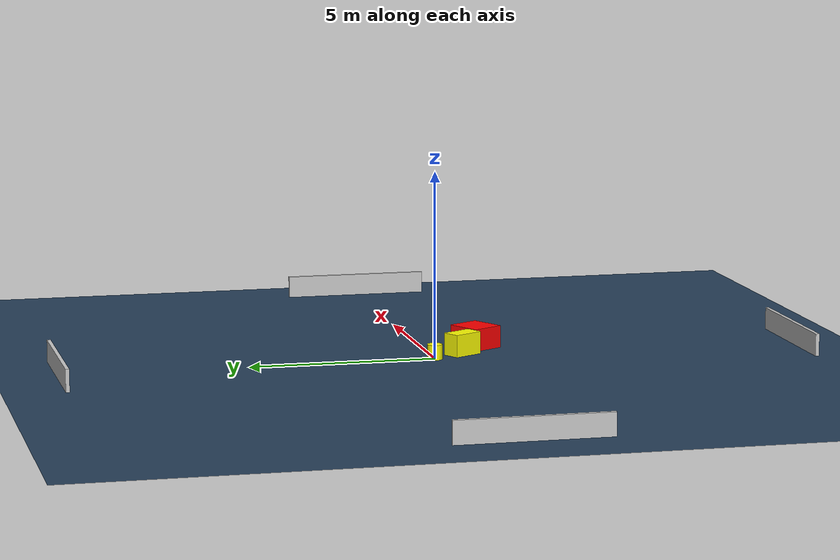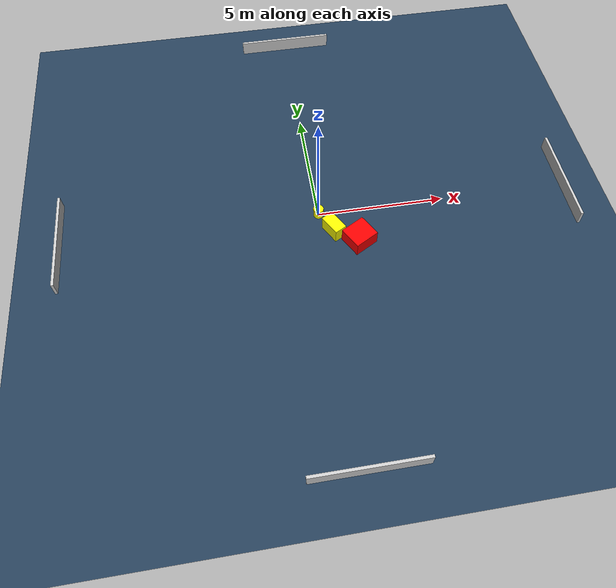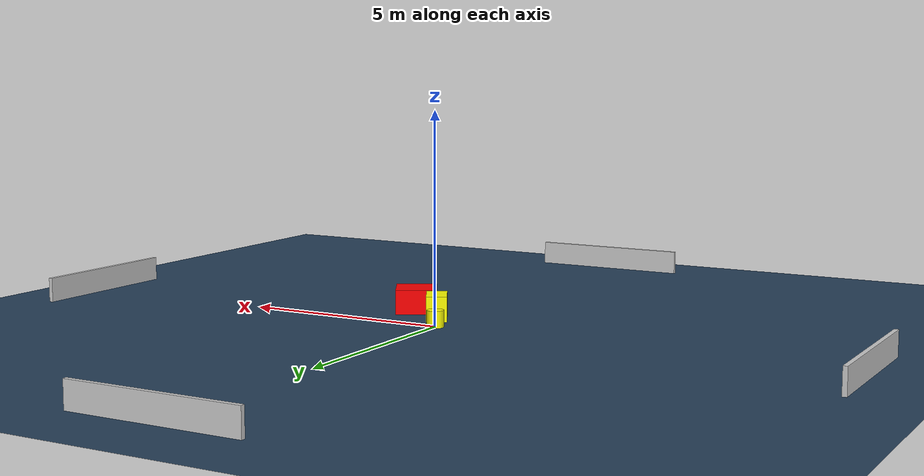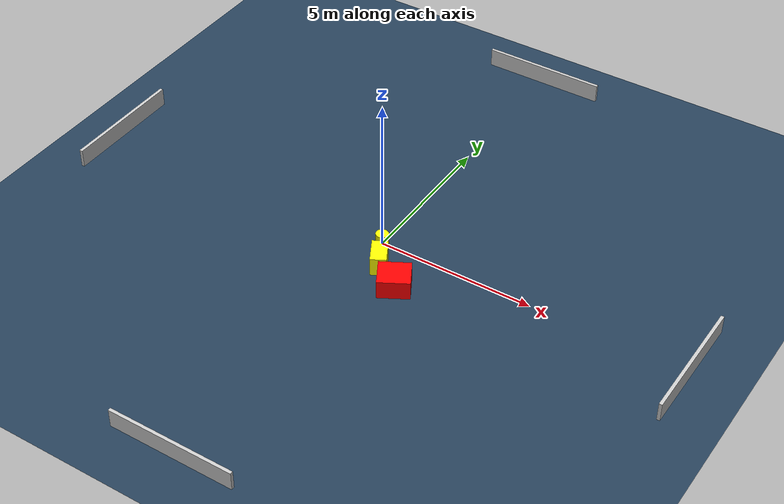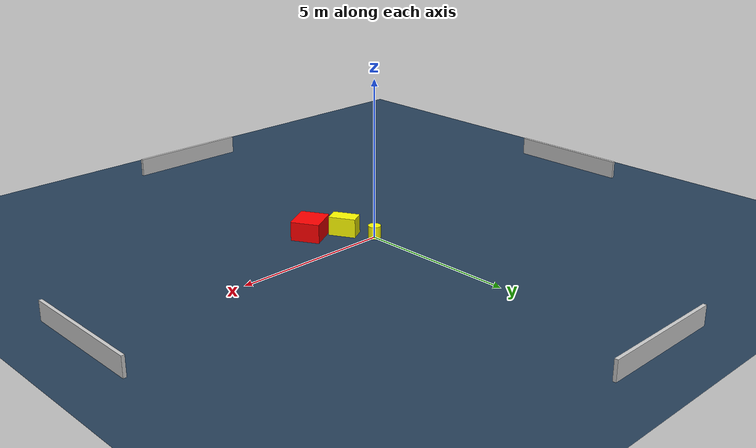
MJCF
<?xml version="1.0" ?>
<mujoco model="generated_environment">
  <option timestep="0.01" integrator="RK4" cone="elliptic"/>
  <default>
    <geom density="1"/>
  </default>
  <asset>
    <texture builtin="gradient" height="3072" name="skybox" rgb1="0.3 0.5 0.7" rgb2="0 0 0" type="skybox" width="512"/>
    <texture builtin="checker" height="300" name="groundplane" rgb1="0.2 0.3 0.4" rgb2="0.1 0.2 0.3" type="2d" width="300"/>
    <material name="groundplane" reflectance="0.2" texrepeat="5 5" texture="groundplane"/>
  </asset>
  <worldbody>
    <light dir="0 0 -1" directional="true" pos="0 0 1.5"/>
    <geom condim="3" friction="0.5 0.005 0.001" material="groundplane" name="floor" pos="0 0 0" size="0 0 0.05" type="plane"/>
    <body name="walls">
      <geom name="wall_1" condim="4" pos="-10.0 0.0 0.3" rgba="0.800000011920929 0.800000011920929 0.800000011920929 1.0" size="0.05 2.0 0.3" type="box"/>
      <geom name="wall_2" condim="4" pos="10.0 0.0 0.3" rgba="0.800000011920929 0.800000011920929 0.800000011920929 1.0" size="0.05 2.0 0.3" type="box"/>
      <geom name="wall_3" condim="4" pos="0.0 -10.0 0.3" rgba="0.800000011920929 0.800000011920929 0.800000011920929 1.0" size="2.0 0.05 0.3" type="box"/>
      <geom name="wall_4" condim="4" pos="0.0 10.0 0.3" rgba="0.800000011920929 0.800000011920929 0.800000011920929 1.0" size="2.0 0.05 0.3" type="box"/>
    </body>
    <body name="robot">
      <joint name="joint_x" type="slide" pos="0 0 0" axis="1 0 0"/>
      <joint name="joint_y" type="slide" pos="0 0 0" axis="0 1 0"/>
      <geom name="robot" type="cylinder" pos="0.0 0.0 0.2" size="0.2 0.2 0.0" mass="5.0" friction="1.0 0.005 0.0001" condim="4" rgba="1.0 1.0 0.0 1.0"/>
    </body>
    <body name="obstacle_1_movable">
      <geom name="obstacle_1_movable" condim="4" pos="0.4613896611834093 -0.8740603244681163 0.3" euler="0 0 118.78700243721549" friction="0.0 0.005 0.001" rgba="1.0 1.0 0.0 1.0" size="0.4276569972406323 0.24665797534482703 0.3" type="box" mass="0.1"/>
      <joint type="free"/>
    </body>
    <body name="obstacle_2_static">
      <geom name="obstacle_2_static" condim="4" pos="1.3570301239663174 -1.454495438413352 0.3" euler="0 0 29.2828878997352" friction="0.0 0.005 0.001" rgba="1.0 0.0 0.0 1.0" size="0.4953593272480165 0.45678538738077795 0.3" type="box"/>
    </body>
  </worldbody>
  <actuator>
    <motor name="actuator_x" joint="joint_x" gear="1" ctrlrange="-1 1"/>
    <motor name="actuator_y" joint="joint_y" gear="1" ctrlrange="-1 1"/>
  </actuator>
</mujoco>
